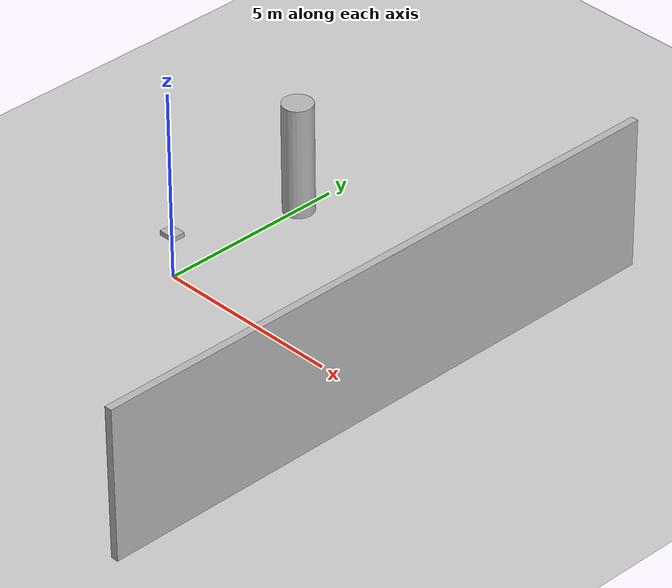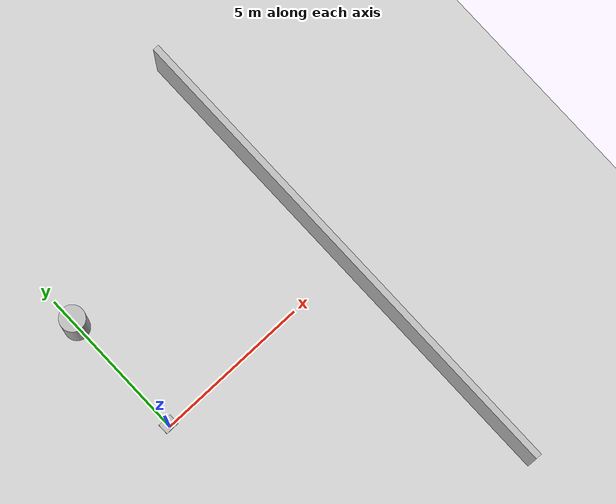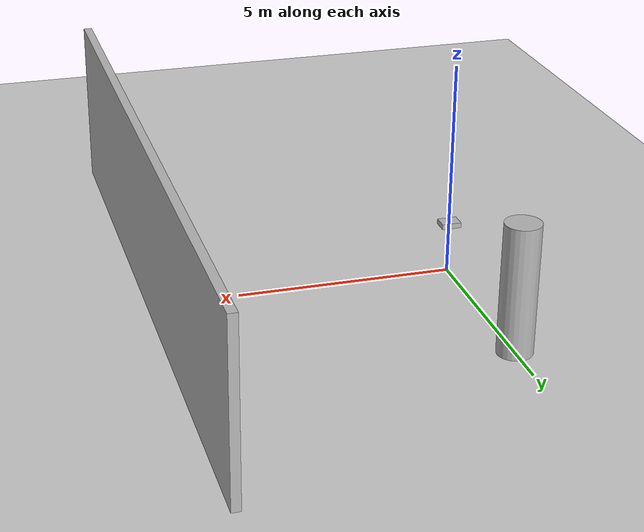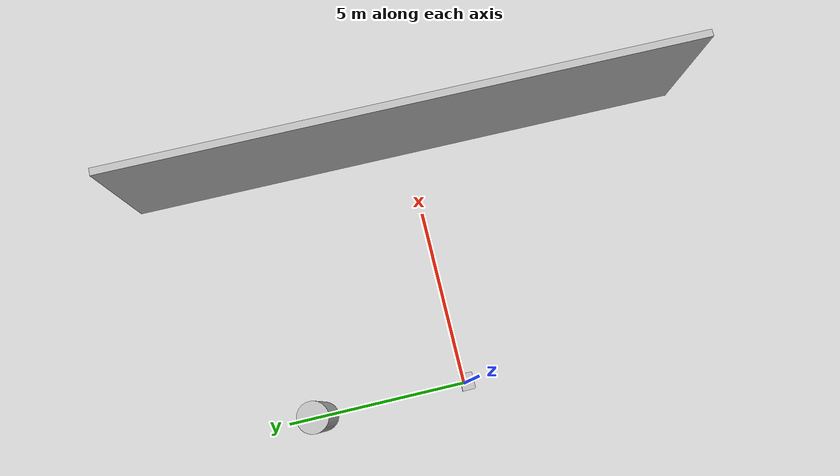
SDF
<?xml version="1.0"?>
<sdf version="1.9">
  <world name="m1_mid360_harness">
    <physics name="physics" type="ignored"><max_step_size>0.001</max_step_size><real_time_factor>1.0</real_time_factor></physics>
    <plugin filename="gz-sim-physics-system" name="gz::sim::systems::Physics"/>
    <plugin filename="gz-sim-user-commands-system" name="gz::sim::systems::UserCommands"/>
    <plugin filename="gz-sim-scene-broadcaster-system" name="gz::sim::systems::SceneBroadcaster"/>
    <plugin filename="gz-sim-sensors-system" name="gz::sim::systems::Sensors"><render_engine>ogre2</render_engine></plugin>
    <plugin filename="gz-sim-imu-system" name="gz::sim::systems::Imu"/>
    <light type="directional" name="sun"><pose>0 0 10 0 0 0</pose><direction>-0.5 0.1 -0.9</direction></light>
    <model name="ground"><static>true</static><link name="link"><collision name="collision"><geometry><plane><normal>0 0 1</normal><size>100 100</size></plane></geometry></collision><visual name="visual"><geometry><plane><normal>0 0 1</normal><size>100 100</size></plane></geometry></visual></link></model>
    <model name="reference_wall"><static>true</static><pose>7 0 2 0 0 0</pose><link name="link"><collision name="collision"><geometry><box><size>0.2 16 4</size></box></geometry></collision><visual name="visual"><geometry><box><size>0.2 16 4</size></box></geometry></visual></link></model>
    <model name="reference_pillar"><static>true</static><pose>0 4 1.5 0 0 0</pose><link name="link"><collision name="collision"><geometry><cylinder><radius>0.4</radius><length>3</length></cylinder></geometry></collision><visual name="visual"><geometry><cylinder><radius>0.4</radius><length>3</length></cylinder></geometry></visual></link></model>
    <include><uri>model://mid360_imu_rig</uri></include>
  </world>
</sdf>

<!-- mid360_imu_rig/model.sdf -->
<sdf version="1.9">
  <model name="mid360_imu_rig">
    <pose>0 0 1.2 0 0 0</pose>
    <link name="base_link">
      <inertial>
        <mass>1.0</mass>
        <inertia><ixx>0.02</ixx><iyy>0.02</iyy><izz>0.03</izz></inertia>
      </inertial>
      <visual name="body_visual">
        <geometry><box><size>0.45 0.35 0.12</size></box></geometry>
      </visual>
      <collision name="body_collision">
        <geometry><box><size>0.45 0.35 0.12</size></box></geometry>
      </collision>
      <sensor name="imu_sensor" type="imu">
        <always_on>true</always_on>
        <update_rate>200</update_rate>
        <topic>/sim/imu/data</topic>
        <frame_id>imu_link</frame_id>
      </sensor>
    </link>
    <link name="lidar_link">
      <pose relative_to="base_link">0 0 0.15 0 0 0</pose>
      <visual name="lidar_visual">
        <geometry><cylinder><radius>0.055</radius><length>0.06</length></cylinder></geometry>
      </visual>
      <sensor name="lidar_sensor" type="gpu_lidar">
        <always_on>true</always_on>
        <update_rate>10</update_rate>
        <topic>/sim/lidar/points</topic>
        <frame_id>lidar_link</frame_id>
        <lidar>
          <scan>
            <horizontal><samples>1024</samples><resolution>1</resolution><min_angle>-3.14159265</min_angle><max_angle>3.14159265</max_angle></horizontal>
            <vertical><samples>32</samples><resolution>1</resolution><min_angle>-0.52</min_angle><max_angle>0.52</max_angle></vertical>
          </scan>
          <range><min>0.2</min><max>70.0</max><resolution>0.02</resolution></range>
        </lidar>
      </sensor>
    </link>
    <joint name="base_to_lidar" type="fixed">
      <parent>base_link</parent><child>lidar_link</child>
    </joint>
    <plugin filename="gz-sim-velocity-control-system" name="gz::sim::systems::VelocityControl">
      <topic>/model/mid360_imu_rig/cmd_vel</topic>
    </plugin>
  </model>
</sdf>
